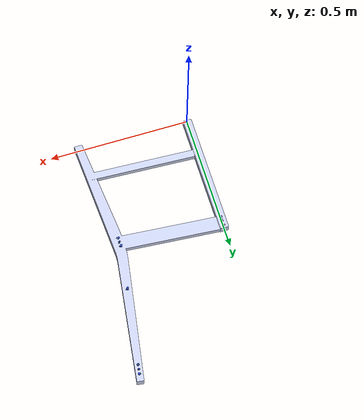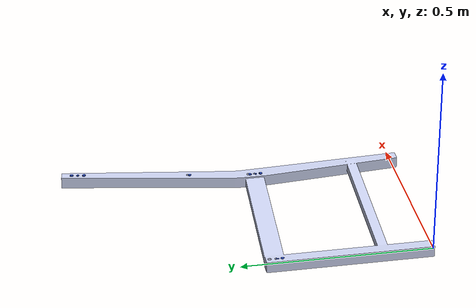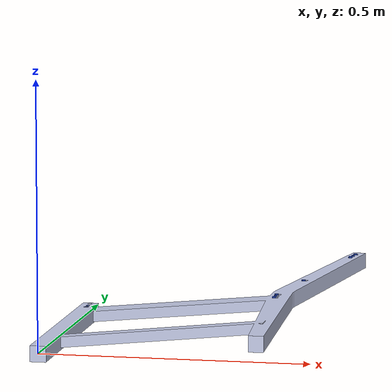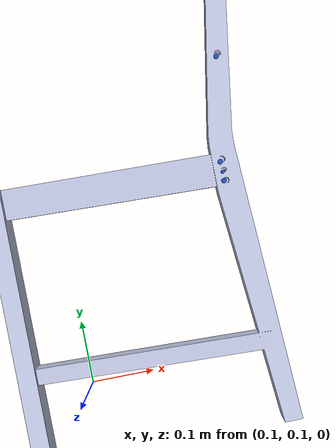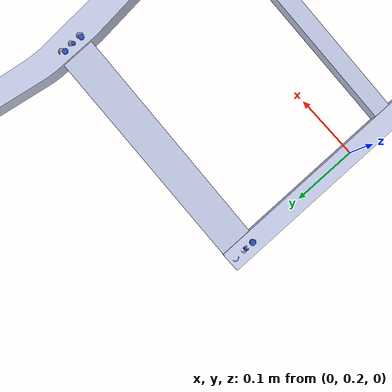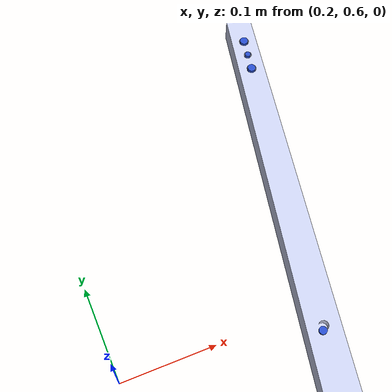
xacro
<?xml version="1.0" encoding="utf-8"?>
<robot name="PART5.SLDPRT" xmlns:xacro="http://www.ros.org/wiki/xacro">

	<link name="PART5.SLDPRT">
		<inertial>
			<origin xyz="0.25069 0.35098 0.021275" rpy="0 0 0"></origin>
			<mass value="1.8124"></mass>
			<inertia ixx="0.085423" ixy="0.02825" ixz="0.004314" iyy="0.051695" iyz="0.0019941" izz="0.13615"></inertia>
		</inertial>
		<visual>
			<origin xyz="0 0 0" rpy="0 0 0"></origin>
			<geometry>
				<mesh filename="package://object_description/urdfs_from_hj/PART5.SLDPRT/meshes/PART5.SLDPRT.STL"></mesh>
			</geometry>
			<material name="">
				<color rgba="0.79216 0.81961 0.93333 1"></color>
			</material>
		</visual>
		<collision>
			<origin xyz="0 0 0" rpy="0 0 0"></origin>
			<geometry>
				<mesh filename="package://object_description/urdfs_from_hj/PART5.SLDPRT/meshes/PART5.SLDPRT.STL"></mesh>
			</geometry>
		</collision>
	</link>
	<link name="PART5 hole blocked 1">
		<visual>
			<origin xyz="0 0 0" rpy="0 0 0"></origin>
			<geometry>
				<cylinder length="0.01" radius="0.004"></cylinder>
			</geometry>
		</visual>
	</link>
	<link name="PART5 hole opened 2">
		<visual>
			<origin xyz="0 0 0" rpy="0 0 0"></origin>
			<geometry>
				<cylinder length="0.03" radius="0.00275"></cylinder>
			</geometry>
		</visual>
	</link>
	<link name="PART5 hole blocked 3">
		<visual>
			<origin xyz="0 0 0" rpy="0 0 0"></origin>
			<geometry>
				<cylinder length="0.01" radius="0.004"></cylinder>
			</geometry>
		</visual>
	</link>
	<link name="PART5 hole blocked 4">
		<visual>
			<origin xyz="0 0 0" rpy="0 0 0"></origin>
			<geometry>
				<cylinder length="0.01" radius="0.004"></cylinder>
			</geometry>
		</visual>
	</link>
	<link name="PART5 hole opened 5">
		<visual>
			<origin xyz="0 0 0" rpy="0 0 0"></origin>
			<geometry>
				<cylinder length="0.03" radius="0.00275"></cylinder>
			</geometry>
		</visual>
	</link>
	<link name="PART5 hole blocked 6">
		<visual>
			<origin xyz="0 0 0" rpy="0 0 0"></origin>
			<geometry>
				<cylinder length="0.01" radius="0.004"></cylinder>
			</geometry>
		</visual>
	</link>
	<link name="PART5 hole blocked 7">
		<visual>
			<origin xyz="0 0 0" rpy="0 0 0"></origin>
			<geometry>
				<cylinder length="0.015" radius="0.004"></cylinder>
			</geometry>
		</visual>
	</link>
	<link name="PART5 hole blocked 8">
		<visual>
			<origin xyz="0 0 0" rpy="0 0 0"></origin>
			<geometry>
				<cylinder length="0.015" radius="0.004"></cylinder>
			</geometry>
		</visual>
	</link>
	<link name="PART5 hole opened 9">
		<visual>
			<origin xyz="0 0 0" rpy="0 0 0"></origin>
			<geometry>
				<cylinder length="0.03" radius="0.00275"></cylinder>
			</geometry>
		</visual>
	</link>
	<link name="PART5 hole blocked 10">
		<visual>
			<origin xyz="0 0 0" rpy="0 0 0"></origin>
			<geometry>
				<cylinder length="0.015" radius="0.004"></cylinder>
			</geometry>
		</visual>
	</link>
	<joint name="PART5 hole blocked 1 joint" type="fixed">
		<origin xyz="0.0 0.392 0.01" rpy="0.0 3.14159265359 0.0"></origin>
		<parent link="PART5.SLDPRT"></parent>
		<child link="PART5 hole blocked 1"></child>
	</joint>
	<joint name="PART5 hole opened 2 joint" type="fixed">
		<origin xyz="0.001329 0.4045 0.0" rpy="0.0 0.0 0.0"></origin>
		<parent link="PART5.SLDPRT"></parent>
		<child link="PART5 hole opened 2"></child>
	</joint>
	<joint name="PART5 hole blocked 3 joint" type="fixed">
		<origin xyz="0.0 0.40422 0.01" rpy="0.0 3.14159265359 0.0"></origin>
		<parent link="PART5.SLDPRT"></parent>
		<child link="PART5 hole blocked 3"></child>
	</joint>
	<joint name="PART5 hole blocked 4 joint" type="fixed">
		<origin xyz="0.36666 0.37903 0.045" rpy="0.0 3.14159265359 0.0"></origin>
		<parent link="PART5.SLDPRT"></parent>
		<child link="PART5 hole blocked 4"></child>
	</joint>
	<joint name="PART5 hole opened 5 joint" type="fixed">
		<origin xyz="0.36727 0.39261 0.035" rpy="0.0 0.0 0.0"></origin>
		<parent link="PART5.SLDPRT"></parent>
		<child link="PART5 hole opened 5"></child>
	</joint>
	<joint name="PART5 hole blocked 6 joint" type="fixed">
		<origin xyz="0.36666 0.40831 0.045" rpy="0.0 3.14159265359 0.0"></origin>
		<parent link="PART5.SLDPRT"></parent>
		<child link="PART5 hole blocked 6"></child>
	</joint>
	<joint name="PART5 hole blocked 7 joint" type="fixed">
		<origin xyz="0.39163 0.56715 0.0425" rpy="0.0 3.14159265359 0.0"></origin>
		<parent link="PART5.SLDPRT"></parent>
		<child link="PART5 hole blocked 7"></child>
	</joint>
	<joint name="PART5 hole blocked 8 joint" type="fixed">
		<origin xyz="0.43931 0.84512 0.0425" rpy="0.0 3.14159265359 0.0"></origin>
		<parent link="PART5.SLDPRT"></parent>
		<child link="PART5 hole blocked 8"></child>
	</joint>
	<joint name="PART5 hole opened 9 joint" type="fixed">
		<origin xyz="0.44198 0.8614 0.035" rpy="0.0 0.0 0.0"></origin>
		<parent link="PART5.SLDPRT"></parent>
		<child link="PART5 hole opened 9"></child>
	</joint>
	<joint name="PART5 hole blocked 10 joint" type="fixed">
		<origin xyz="0.44464 0.87769 0.0425" rpy="0.0 3.14159265359 0.0"></origin>
		<parent link="PART5.SLDPRT"></parent>
		<child link="PART5 hole blocked 10"></child>
	</joint>
	<gazebo reference="PART5 hole blocked 1">
		<material>Gazebo/BlueTransparent</material>
	</gazebo>
	<gazebo reference="PART5 hole opened 2">
		<material>Gazebo/BlueTransparent</material>
	</gazebo>
	<gazebo reference="PART5 hole blocked 3">
		<material>Gazebo/BlueTransparent</material>
	</gazebo>
	<gazebo reference="PART5 hole blocked 4">
		<material>Gazebo/BlueTransparent</material>
	</gazebo>
	<gazebo reference="PART5 hole opened 5">
		<material>Gazebo/BlueTransparent</material>
	</gazebo>
	<gazebo reference="PART5 hole blocked 6">
		<material>Gazebo/BlueTransparent</material>
	</gazebo>
	<gazebo reference="PART5 hole blocked 7">
		<material>Gazebo/BlueTransparent</material>
	</gazebo>
	<gazebo reference="PART5 hole blocked 8">
		<material>Gazebo/BlueTransparent</material>
	</gazebo>
	<gazebo reference="PART5 hole opened 9">
		<material>Gazebo/BlueTransparent</material>
	</gazebo>
	<gazebo reference="PART5 hole blocked 10">
		<material>Gazebo/BlueTransparent</material>
	</gazebo>
</robot>
